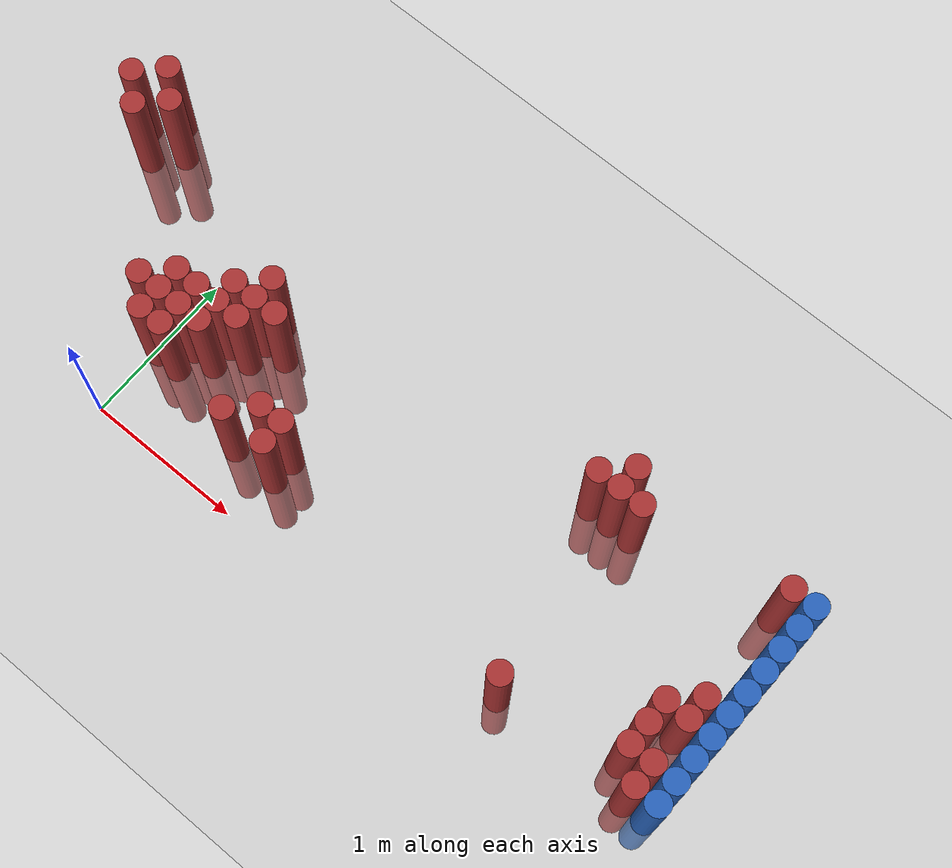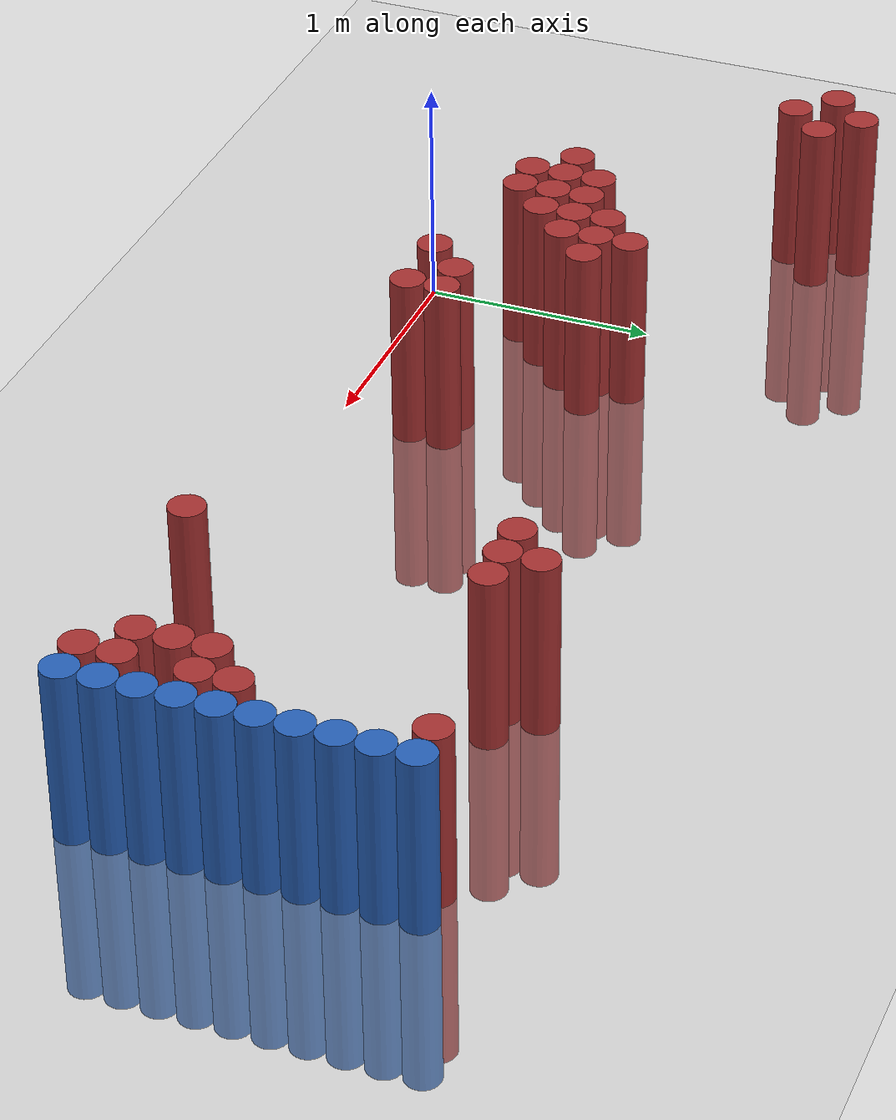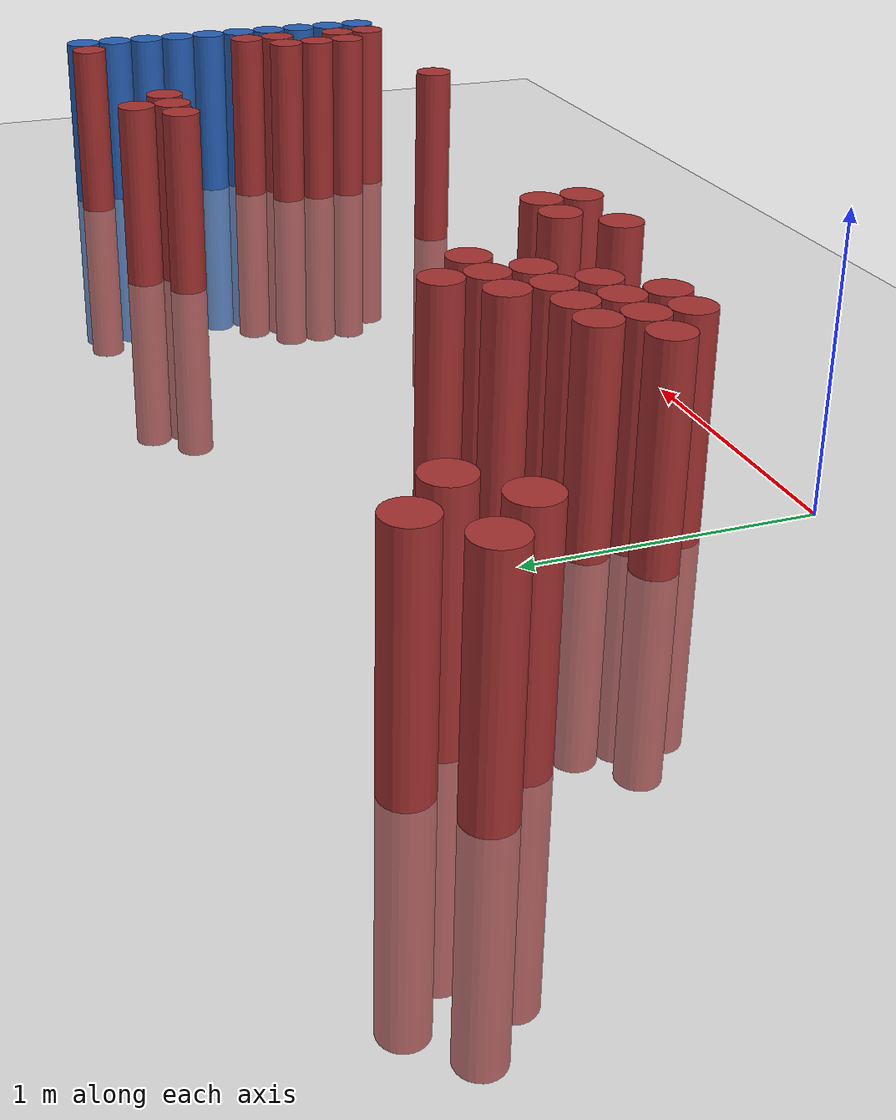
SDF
<sdf version="1.6">
 <world name="default">
  <model name="ground_plane">
   <static>1</static>
   <link name="link">
    <collision name="collision">
     <geometry><plane><normal>0 0 1</normal><size>100 100</size></plane></geometry>
     <surface><friction><ode><mu>100</mu><mu2>50</mu2></ode></friction></surface>
    </collision>
    <visual name="visual">
     <cast_shadows>0</cast_shadows>
     <geometry><plane><normal>0 0 1</normal><size>100 100</size></plane></geometry>
     <material>
      <script><uri>file://media/materials/scripts/gazebo.material</uri><name>Gazebo/Grey</name></script>
     </material>
    </visual>
   </link>
  </model>
  <model name="unit_cylinder_118">
   <static>1</static>
   <pose>3.925000 0.325000 0.000000 0.000000 0.000000 0.000000</pose>
   <link name="link">
    <inertial>
     <mass>1</mass>
     <inertia><ixx>0.145833</ixx><ixy>0</ixy><ixz>0</ixz><iyy>0.145833</iyy><iyz>0</iyz><izz>0.125</izz></inertia>
    </inertial>
    <collision name="collision">
     <geometry><cylinder><radius>0.075000</radius><length>1.5</length></cylinder></geometry>
    </collision>
    <visual name="visual">
     <geometry><cylinder><radius>0.075000</radius><length>1.5</length></cylinder></geometry>
     <material>
      <ambient>0.152000 0.379000 0.720000 1</ambient>
      <diffuse>0.152000 0.379000 0.720000 1</diffuse>
     </material>
     <material>
      <script><name>Gazebo/Grey</name><uri>file://media/materials/scripts/gazebo.material</uri></script>
     </material>
    </visual>
   </link>
  </model>
  <model name="unit_cylinder_120">
   <static>1</static>
   <pose>3.925000 0.475000 0.000000 0.000000 0.000000 0.000000</pose>
   <link name="link">
    <inertial>
     <mass>1</mass>
     <inertia><ixx>0.145833</ixx><ixy>0</ixy><ixz>0</ixz><iyy>0.145833</iyy><iyz>0</iyz><izz>0.125</izz></inertia>
    </inertial>
    <collision name="collision">
     <geometry><cylinder><radius>0.075000</radius><length>1.5</length></cylinder></geometry>
    </collision>
    <visual name="visual">
     <geometry><cylinder><radius>0.075000</radius><length>1.5</length></cylinder></geometry>
     <material>
      <ambient>0.152000 0.379000 0.720000 1</ambient>
      <diffuse>0.152000 0.379000 0.720000 1</diffuse>
     </material>
     <material>
      <script><name>Gazebo/Grey</name><uri>file://media/materials/scripts/gazebo.material</uri></script>
     </material>
    </visual>
   </link>
  </model>
  <model name="unit_cylinder_122">
   <static>1</static>
   <pose>3.925000 0.625000 0.000000 0.000000 0.000000 0.000000</pose>
   <link name="link">
    <inertial>
     <mass>1</mass>
     <inertia><ixx>0.145833</ixx><ixy>0</ixy><ixz>0</ixz><iyy>0.145833</iyy><iyz>0</iyz><izz>0.125</izz></inertia>
    </inertial>
    <collision name="collision">
     <geometry><cylinder><radius>0.075000</radius><length>1.5</length></cylinder></geometry>
    </collision>
    <visual name="visual">
     <geometry><cylinder><radius>0.075000</radius><length>1.5</length></cylinder></geometry>
     <material>
      <ambient>0.152000 0.379000 0.720000 1</ambient>
      <diffuse>0.152000 0.379000 0.720000 1</diffuse>
     </material>
     <material>
      <script><name>Gazebo/Grey</name><uri>file://media/materials/scripts/gazebo.material</uri></script>
     </material>
    </visual>
   </link>
  </model>
  <model name="unit_cylinder_124">
   <static>1</static>
   <pose>3.925000 0.775000 0.000000 0.000000 0.000000 0.000000</pose>
   <link name="link">
    <inertial>
     <mass>1</mass>
     <inertia><ixx>0.145833</ixx><ixy>0</ixy><ixz>0</ixz><iyy>0.145833</iyy><iyz>0</iyz><izz>0.125</izz></inertia>
    </inertial>
    <collision name="collision">
     <geometry><cylinder><radius>0.075000</radius><length>1.5</length></cylinder></geometry>
    </collision>
    <visual name="visual">
     <geometry><cylinder><radius>0.075000</radius><length>1.5</length></cylinder></geometry>
     <material>
      <ambient>0.152000 0.379000 0.720000 1</ambient>
      <diffuse>0.152000 0.379000 0.720000 1</diffuse>
     </material>
     <material>
      <script><name>Gazebo/Grey</name><uri>file://media/materials/scripts/gazebo.material</uri></script>
     </material>
    </visual>
   </link>
  </model>
  <model name="unit_cylinder_126">
   <static>1</static>
   <pose>3.925000 0.925000 0.000000 0.000000 0.000000 0.000000</pose>
   <link name="link">
    <inertial>
     <mass>1</mass>
     <inertia><ixx>0.145833</ixx><ixy>0</ixy><ixz>0</ixz><iyy>0.145833</iyy><iyz>0</iyz><izz>0.125</izz></inertia>
    </inertial>
    <collision name="collision">
     <geometry><cylinder><radius>0.075000</radius><length>1.5</length></cylinder></geometry>
    </collision>
    <visual name="visual">
     <geometry><cylinder><radius>0.075000</radius><length>1.5</length></cylinder></geometry>
     <material>
      <ambient>0.152000 0.379000 0.720000 1</ambient>
      <diffuse>0.152000 0.379000 0.720000 1</diffuse>
     </material>
     <material>
      <script><name>Gazebo/Grey</name><uri>file://media/materials/scripts/gazebo.material</uri></script>
     </material>
    </visual>
   </link>
  </model>
  <model name="unit_cylinder_128">
   <static>1</static>
   <pose>3.925000 1.075000 0.000000 0.000000 0.000000 0.000000</pose>
   <link name="link">
    <inertial>
     <mass>1</mass>
     <inertia><ixx>0.145833</ixx><ixy>0</ixy><ixz>0</ixz><iyy>0.145833</iyy><iyz>0</iyz><izz>0.125</izz></inertia>
    </inertial>
    <collision name="collision">
     <geometry><cylinder><radius>0.075000</radius><length>1.5</length></cylinder></geometry>
    </collision>
    <visual name="visual">
     <geometry><cylinder><radius>0.075000</radius><length>1.5</length></cylinder></geometry>
     <material>
      <ambient>0.152000 0.379000 0.720000 1</ambient>
      <diffuse>0.152000 0.379000 0.720000 1</diffuse>
     </material>
     <material>
      <script><name>Gazebo/Grey</name><uri>file://media/materials/scripts/gazebo.material</uri></script>
     </material>
    </visual>
   </link>
  </model>
  <model name="unit_cylinder_130">
   <static>1</static>
   <pose>3.925000 1.225000 0.000000 0.000000 0.000000 0.000000</pose>
   <link name="link">
    <inertial>
     <mass>1</mass>
     <inertia><ixx>0.145833</ixx><ixy>0</ixy><ixz>0</ixz><iyy>0.145833</iyy><iyz>0</iyz><izz>0.125</izz></inertia>
    </inertial>
    <collision name="collision">
     <geometry><cylinder><radius>0.075000</radius><length>1.5</length></cylinder></geometry>
    </collision>
    <visual name="visual">
     <geometry><cylinder><radius>0.075000</radius><length>1.5</length></cylinder></geometry>
     <material>
      <ambient>0.152000 0.379000 0.720000 1</ambient>
      <diffuse>0.152000 0.379000 0.720000 1</diffuse>
     </material>
     <material>
      <script><name>Gazebo/Grey</name><uri>file://media/materials/scripts/gazebo.material</uri></script>
     </material>
    </visual>
   </link>
  </model>
  <model name="unit_cylinder_132">
   <static>1</static>
   <pose>3.925000 1.375000 0.000000 0.000000 0.000000 0.000000</pose>
   <link name="link">
    <inertial>
     <mass>1</mass>
     <inertia><ixx>0.145833</ixx><ixy>0</ixy><ixz>0</ixz><iyy>0.145833</iyy><iyz>0</iyz><izz>0.125</izz></inertia>
    </inertial>
    <collision name="collision">
     <geometry><cylinder><radius>0.075000</radius><length>1.5</length></cylinder></geometry>
    </collision>
    <visual name="visual">
     <geometry><cylinder><radius>0.075000</radius><length>1.5</length></cylinder></geometry>
     <material>
      <ambient>0.152000 0.379000 0.720000 1</ambient>
      <diffuse>0.152000 0.379000 0.720000 1</diffuse>
     </material>
     <material>
      <script><name>Gazebo/Grey</name><uri>file://media/materials/scripts/gazebo.material</uri></script>
     </material>
    </visual>
   </link>
  </model>
  <model name="unit_cylinder_134">
   <static>1</static>
   <pose>3.925000 1.525000 0.000000 0.000000 0.000000 0.000000</pose>
   <link name="link">
    <inertial>
     <mass>1</mass>
     <inertia><ixx>0.145833</ixx><ixy>0</ixy><ixz>0</ixz><iyy>0.145833</iyy><iyz>0</iyz><izz>0.125</izz></inertia>
    </inertial>
    <collision name="collision">
     <geometry><cylinder><radius>0.075000</radius><length>1.5</length></cylinder></geometry>
    </collision>
    <visual name="visual">
     <geometry><cylinder><radius>0.075000</radius><length>1.5</length></cylinder></geometry>
     <material>
      <ambient>0.152000 0.379000 0.720000 1</ambient>
      <diffuse>0.152000 0.379000 0.720000 1</diffuse>
     </material>
     <material>
      <script><name>Gazebo/Grey</name><uri>file://media/materials/scripts/gazebo.material</uri></script>
     </material>
    </visual>
   </link>
  </model>
  <model name="unit_cylinder_319">
   <static>1</static>
   <pose>-1.025000 1.525000 0.000000 0.000000 0.000000 0.000000</pose>
   <link name="link">
    <inertial>
     <mass>1</mass>
     <inertia><ixx>0.145833</ixx><ixy>0</ixy><ixz>0</ixz><iyy>0.145833</iyy><iyz>0</iyz><izz>0.125</izz></inertia>
    </inertial>
    <collision name="collision">
     <geometry><cylinder><radius>0.075000</radius><length>1.5</length></cylinder></geometry>
    </collision>
    <visual name="visual">
     <geometry><cylinder><radius>0.075000</radius><length>1.5</length></cylinder></geometry>
     <material>
      <ambient>0.648000 0.192000 0.192000 1</ambient>
      <diffuse>0.648000 0.192000 0.192000 1</diffuse>
     </material>
     <material>
      <script><name>Gazebo/Grey</name><uri>file://media/materials/scripts/gazebo.material</uri></script>
     </material>
    </visual>
   </link>
  </model>
  <model name="unit_cylinder_323">
   <static>1</static>
   <pose>-0.875000 1.375000 0.000000 0.000000 0.000000 0.000000</pose>
   <link name="link">
    <inertial>
     <mass>1</mass>
     <inertia><ixx>0.145833</ixx><ixy>0</ixy><ixz>0</ixz><iyy>0.145833</iyy><iyz>0</iyz><izz>0.125</izz></inertia>
    </inertial>
    <collision name="collision">
     <geometry><cylinder><radius>0.075000</radius><length>1.5</length></cylinder></geometry>
    </collision>
    <visual name="visual">
     <geometry><cylinder><radius>0.075000</radius><length>1.5</length></cylinder></geometry>
     <material>
      <ambient>0.648000 0.192000 0.192000 1</ambient>
      <diffuse>0.648000 0.192000 0.192000 1</diffuse>
     </material>
     <material>
      <script><name>Gazebo/Grey</name><uri>file://media/materials/scripts/gazebo.material</uri></script>
     </material>
    </visual>
   </link>
  </model>
  <model name="unit_cylinder_324">
   <static>1</static>
   <pose>-0.875000 1.675000 0.000000 0.000000 0.000000 0.000000</pose>
   <link name="link">
    <inertial>
     <mass>1</mass>
     <inertia><ixx>0.145833</ixx><ixy>0</ixy><ixz>0</ixz><iyy>0.145833</iyy><iyz>0</iyz><izz>0.125</izz></inertia>
    </inertial>
    <collision name="collision">
     <geometry><cylinder><radius>0.075000</radius><length>1.5</length></cylinder></geometry>
    </collision>
    <visual name="visual">
     <geometry><cylinder><radius>0.075000</radius><length>1.5</length></cylinder></geometry>
     <material>
      <ambient>0.648000 0.192000 0.192000 1</ambient>
      <diffuse>0.648000 0.192000 0.192000 1</diffuse>
     </material>
     <material>
      <script><name>Gazebo/Grey</name><uri>file://media/materials/scripts/gazebo.material</uri></script>
     </material>
    </visual>
   </link>
  </model>
  <model name="unit_cylinder_329">
   <static>1</static>
   <pose>-0.725000 1.525000 0.000000 0.000000 0.000000 0.000000</pose>
   <link name="link">
    <inertial>
     <mass>1</mass>
     <inertia><ixx>0.145833</ixx><ixy>0</ixy><ixz>0</ixz><iyy>0.145833</iyy><iyz>0</iyz><izz>0.125</izz></inertia>
    </inertial>
    <collision name="collision">
     <geometry><cylinder><radius>0.075000</radius><length>1.5</length></cylinder></geometry>
    </collision>
    <visual name="visual">
     <geometry><cylinder><radius>0.075000</radius><length>1.5</length></cylinder></geometry>
     <material>
      <ambient>0.648000 0.192000 0.192000 1</ambient>
      <diffuse>0.648000 0.192000 0.192000 1</diffuse>
     </material>
     <material>
      <script><name>Gazebo/Grey</name><uri>file://media/materials/scripts/gazebo.material</uri></script>
     </material>
    </visual>
   </link>
  </model>
  <model name="unit_cylinder_335">
   <static>1</static>
   <pose>-0.125000 0.625000 0.000000 0.000000 0.000000 0.000000</pose>
   <link name="link">
    <inertial>
     <mass>1</mass>
     <inertia><ixx>0.145833</ixx><ixy>0</ixy><ixz>0</ixz><iyy>0.145833</iyy><iyz>0</iyz><izz>0.125</izz></inertia>
    </inertial>
    <collision name="collision">
     <geometry><cylinder><radius>0.075000</radius><length>1.5</length></cylinder></geometry>
    </collision>
    <visual name="visual">
     <geometry><cylinder><radius>0.075000</radius><length>1.5</length></cylinder></geometry>
     <material>
      <ambient>0.648000 0.192000 0.192000 1</ambient>
      <diffuse>0.648000 0.192000 0.192000 1</diffuse>
     </material>
     <material>
      <script><name>Gazebo/Grey</name><uri>file://media/materials/scripts/gazebo.material</uri></script>
     </material>
    </visual>
   </link>
  </model>
  <model name="unit_cylinder_338">
   <static>1</static>
   <pose>0.025000 0.475000 0.000000 0.000000 0.000000 0.000000</pose>
   <link name="link">
    <inertial>
     <mass>1</mass>
     <inertia><ixx>0.145833</ixx><ixy>0</ixy><ixz>0</ixz><iyy>0.145833</iyy><iyz>0</iyz><izz>0.125</izz></inertia>
    </inertial>
    <collision name="collision">
     <geometry><cylinder><radius>0.075000</radius><length>1.5</length></cylinder></geometry>
    </collision>
    <visual name="visual">
     <geometry><cylinder><radius>0.075000</radius><length>1.5</length></cylinder></geometry>
     <material>
      <ambient>0.648000 0.192000 0.192000 1</ambient>
      <diffuse>0.648000 0.192000 0.192000 1</diffuse>
     </material>
     <material>
      <script><name>Gazebo/Grey</name><uri>file://media/materials/scripts/gazebo.material</uri></script>
     </material>
    </visual>
   </link>
  </model>
  <model name="unit_cylinder_339">
   <static>1</static>
   <pose>0.025000 0.625000 0.000000 0.000000 0.000000 0.000000</pose>
   <link name="link">
    <inertial>
     <mass>1</mass>
     <inertia><ixx>0.145833</ixx><ixy>0</ixy><ixz>0</ixz><iyy>0.145833</iyy><iyz>0</iyz><izz>0.125</izz></inertia>
    </inertial>
    <collision name="collision">
     <geometry><cylinder><radius>0.075000</radius><length>1.5</length></cylinder></geometry>
    </collision>
    <visual name="visual">
     <geometry><cylinder><radius>0.075000</radius><length>1.5</length></cylinder></geometry>
     <material>
      <ambient>0.648000 0.192000 0.192000 1</ambient>
      <diffuse>0.648000 0.192000 0.192000 1</diffuse>
     </material>
     <material>
      <script><name>Gazebo/Grey</name><uri>file://media/materials/scripts/gazebo.material</uri></script>
     </material>
    </visual>
   </link>
  </model>
  <model name="unit_cylinder_340">
   <static>1</static>
   <pose>0.025000 0.775000 0.000000 0.000000 0.000000 0.000000</pose>
   <link name="link">
    <inertial>
     <mass>1</mass>
     <inertia><ixx>0.145833</ixx><ixy>0</ixy><ixz>0</ixz><iyy>0.145833</iyy><iyz>0</iyz><izz>0.125</izz></inertia>
    </inertial>
    <collision name="collision">
     <geometry><cylinder><radius>0.075000</radius><length>1.5</length></cylinder></geometry>
    </collision>
    <visual name="visual">
     <geometry><cylinder><radius>0.075000</radius><length>1.5</length></cylinder></geometry>
     <material>
      <ambient>0.648000 0.192000 0.192000 1</ambient>
      <diffuse>0.648000 0.192000 0.192000 1</diffuse>
     </material>
     <material>
      <script><name>Gazebo/Grey</name><uri>file://media/materials/scripts/gazebo.material</uri></script>
     </material>
    </visual>
   </link>
  </model>
  <model name="unit_cylinder_342">
   <static>1</static>
   <pose>0.175000 0.475000 0.000000 0.000000 0.000000 0.000000</pose>
   <link name="link">
    <inertial>
     <mass>1</mass>
     <inertia><ixx>0.145833</ixx><ixy>0</ixy><ixz>0</ixz><iyy>0.145833</iyy><iyz>0</iyz><izz>0.125</izz></inertia>
    </inertial>
    <collision name="collision">
     <geometry><cylinder><radius>0.075000</radius><length>1.5</length></cylinder></geometry>
    </collision>
    <visual name="visual">
     <geometry><cylinder><radius>0.075000</radius><length>1.5</length></cylinder></geometry>
     <material>
      <ambient>0.648000 0.192000 0.192000 1</ambient>
      <diffuse>0.648000 0.192000 0.192000 1</diffuse>
     </material>
     <material>
      <script><name>Gazebo/Grey</name><uri>file://media/materials/scripts/gazebo.material</uri></script>
     </material>
    </visual>
   </link>
  </model>
  <model name="unit_cylinder_343">
   <static>1</static>
   <pose>0.175000 0.625000 0.000000 0.000000 0.000000 0.000000</pose>
   <link name="link">
    <inertial>
     <mass>1</mass>
     <inertia><ixx>0.145833</ixx><ixy>0</ixy><ixz>0</ixz><iyy>0.145833</iyy><iyz>0</iyz><izz>0.125</izz></inertia>
    </inertial>
    <collision name="collision">
     <geometry><cylinder><radius>0.075000</radius><length>1.5</length></cylinder></geometry>
    </collision>
    <visual name="visual">
     <geometry><cylinder><radius>0.075000</radius><length>1.5</length></cylinder></geometry>
     <material>
      <ambient>0.648000 0.192000 0.192000 1</ambient>
      <diffuse>0.648000 0.192000 0.192000 1</diffuse>
     </material>
     <material>
      <script><name>Gazebo/Grey</name><uri>file://media/materials/scripts/gazebo.material</uri></script>
     </material>
    </visual>
   </link>
  </model>
  <model name="unit_cylinder_344">
   <static>1</static>
   <pose>0.175000 0.775000 0.000000 0.000000 0.000000 0.000000</pose>
   <link name="link">
    <inertial>
     <mass>1</mass>
     <inertia><ixx>0.145833</ixx><ixy>0</ixy><ixz>0</ixz><iyy>0.145833</iyy><iyz>0</iyz><izz>0.125</izz></inertia>
    </inertial>
    <collision name="collision">
     <geometry><cylinder><radius>0.075000</radius><length>1.5</length></cylinder></geometry>
    </collision>
    <visual name="visual">
     <geometry><cylinder><radius>0.075000</radius><length>1.5</length></cylinder></geometry>
     <material>
      <ambient>0.648000 0.192000 0.192000 1</ambient>
      <diffuse>0.648000 0.192000 0.192000 1</diffuse>
     </material>
     <material>
      <script><name>Gazebo/Grey</name><uri>file://media/materials/scripts/gazebo.material</uri></script>
     </material>
    </visual>
   </link>
  </model>
  <model name="unit_cylinder_348">
   <static>1</static>
   <pose>0.325000 0.625000 0.000000 0.000000 0.000000 0.000000</pose>
   <link name="link">
    <inertial>
     <mass>1</mass>
     <inertia><ixx>0.145833</ixx><ixy>0</ixy><ixz>0</ixz><iyy>0.145833</iyy><iyz>0</iyz><izz>0.125</izz></inertia>
    </inertial>
    <collision name="collision">
     <geometry><cylinder><radius>0.075000</radius><length>1.5</length></cylinder></geometry>
    </collision>
    <visual name="visual">
     <geometry><cylinder><radius>0.075000</radius><length>1.5</length></cylinder></geometry>
     <material>
      <ambient>0.648000 0.192000 0.192000 1</ambient>
      <diffuse>0.648000 0.192000 0.192000 1</diffuse>
     </material>
     <material>
      <script><name>Gazebo/Grey</name><uri>file://media/materials/scripts/gazebo.material</uri></script>
     </material>
    </visual>
   </link>
  </model>
  <model name="unit_cylinder_349">
   <static>1</static>
   <pose>0.325000 0.775000 0.000000 0.000000 0.000000 0.000000</pose>
   <link name="link">
    <inertial>
     <mass>1</mass>
     <inertia><ixx>0.145833</ixx><ixy>0</ixy><ixz>0</ixz><iyy>0.145833</iyy><iyz>0</iyz><izz>0.125</izz></inertia>
    </inertial>
    <collision name="collision">
     <geometry><cylinder><radius>0.075000</radius><length>1.5</length></cylinder></geometry>
    </collision>
    <visual name="visual">
     <geometry><cylinder><radius>0.075000</radius><length>1.5</length></cylinder></geometry>
     <material>
      <ambient>0.648000 0.192000 0.192000 1</ambient>
      <diffuse>0.648000 0.192000 0.192000 1</diffuse>
     </material>
     <material>
      <script><name>Gazebo/Grey</name><uri>file://media/materials/scripts/gazebo.material</uri></script>
     </material>
    </visual>
   </link>
  </model>
  <model name="unit_cylinder_350">
   <static>1</static>
   <pose>0.325000 0.925000 0.000000 0.000000 0.000000 0.000000</pose>
   <link name="link">
    <inertial>
     <mass>1</mass>
     <inertia><ixx>0.145833</ixx><ixy>0</ixy><ixz>0</ixz><iyy>0.145833</iyy><iyz>0</iyz><izz>0.125</izz></inertia>
    </inertial>
    <collision name="collision">
     <geometry><cylinder><radius>0.075000</radius><length>1.5</length></cylinder></geometry>
    </collision>
    <visual name="visual">
     <geometry><cylinder><radius>0.075000</radius><length>1.5</length></cylinder></geometry>
     <material>
      <ambient>0.648000 0.192000 0.192000 1</ambient>
      <diffuse>0.648000 0.192000 0.192000 1</diffuse>
     </material>
     <material>
      <script><name>Gazebo/Grey</name><uri>file://media/materials/scripts/gazebo.material</uri></script>
     </material>
    </visual>
   </link>
  </model>
  <model name="unit_cylinder_353">
   <static>1</static>
   <pose>0.475000 0.775000 0.000000 0.000000 0.000000 0.000000</pose>
   <link name="link">
    <inertial>
     <mass>1</mass>
     <inertia><ixx>0.145833</ixx><ixy>0</ixy><ixz>0</ixz><iyy>0.145833</iyy><iyz>0</iyz><izz>0.125</izz></inertia>
    </inertial>
    <collision name="collision">
     <geometry><cylinder><radius>0.075000</radius><length>1.5</length></cylinder></geometry>
    </collision>
    <visual name="visual">
     <geometry><cylinder><radius>0.075000</radius><length>1.5</length></cylinder></geometry>
     <material>
      <ambient>0.648000 0.192000 0.192000 1</ambient>
      <diffuse>0.648000 0.192000 0.192000 1</diffuse>
     </material>
     <material>
      <script><name>Gazebo/Grey</name><uri>file://media/materials/scripts/gazebo.material</uri></script>
     </material>
    </visual>
   </link>
  </model>
  <model name="unit_cylinder_354">
   <static>1</static>
   <pose>0.475000 0.925000 0.000000 0.000000 0.000000 0.000000</pose>
   <link name="link">
    <inertial>
     <mass>1</mass>
     <inertia><ixx>0.145833</ixx><ixy>0</ixy><ixz>0</ixz><iyy>0.145833</iyy><iyz>0</iyz><izz>0.125</izz></inertia>
    </inertial>
    <collision name="collision">
     <geometry><cylinder><radius>0.075000</radius><length>1.5</length></cylinder></geometry>
    </collision>
    <visual name="visual">
     <geometry><cylinder><radius>0.075000</radius><length>1.5</length></cylinder></geometry>
     <material>
      <ambient>0.648000 0.192000 0.192000 1</ambient>
      <diffuse>0.648000 0.192000 0.192000 1</diffuse>
     </material>
     <material>
      <script><name>Gazebo/Grey</name><uri>file://media/materials/scripts/gazebo.material</uri></script>
     </material>
    </visual>
   </link>
  </model>
  <model name="unit_cylinder_355">
   <static>1</static>
   <pose>0.475000 1.075000 0.000000 0.000000 0.000000 0.000000</pose>
   <link name="link">
    <inertial>
     <mass>1</mass>
     <inertia><ixx>0.145833</ixx><ixy>0</ixy><ixz>0</ixz><iyy>0.145833</iyy><iyz>0</iyz><izz>0.125</izz></inertia>
    </inertial>
    <collision name="collision">
     <geometry><cylinder><radius>0.075000</radius><length>1.5</length></cylinder></geometry>
    </collision>
    <visual name="visual">
     <geometry><cylinder><radius>0.075000</radius><length>1.5</length></cylinder></geometry>
     <material>
      <ambient>0.648000 0.192000 0.192000 1</ambient>
      <diffuse>0.648000 0.192000 0.192000 1</diffuse>
     </material>
     <material>
      <script><name>Gazebo/Grey</name><uri>file://media/materials/scripts/gazebo.material</uri></script>
     </material>
    </visual>
   </link>
  </model>
  <model name="unit_cylinder_357">
   <static>1</static>
   <pose>0.625000 0.925000 0.000000 0.000000 0.000000 0.000000</pose>
   <link name="link">
    <inertial>
     <mass>1</mass>
     <inertia><ixx>0.145833</ixx><ixy>0</ixy><ixz>0</ixz><iyy>0.145833</iyy><iyz>0</iyz><izz>0.125</izz></inertia>
    </inertial>
    <collision name="collision">
     <geometry><cylinder><radius>0.075000</radius><length>1.5</length></cylinder></geometry>
    </collision>
    <visual name="visual">
     <geometry><cylinder><radius>0.075000</radius><length>1.5</length></cylinder></geometry>
     <material>
      <ambient>0.648000 0.192000 0.192000 1</ambient>
      <diffuse>0.648000 0.192000 0.192000 1</diffuse>
     </material>
     <material>
      <script><name>Gazebo/Grey</name><uri>file://media/materials/scripts/gazebo.material</uri></script>
     </material>
    </visual>
   </link>
  </model>
  <model name="unit_cylinder_358">
   <static>1</static>
   <pose>0.775000 0.325000 0.000000 0.000000 0.000000 0.000000</pose>
   <link name="link">
    <inertial>
     <mass>1</mass>
     <inertia><ixx>0.145833</ixx><ixy>0</ixy><ixz>0</ixz><iyy>0.145833</iyy><iyz>0</iyz><izz>0.125</izz></inertia>
    </inertial>
    <collision name="collision">
     <geometry><cylinder><radius>0.075000</radius><length>1.5</length></cylinder></geometry>
    </collision>
    <visual name="visual">
     <geometry><cylinder><radius>0.075000</radius><length>1.5</length></cylinder></geometry>
     <material>
      <ambient>0.648000 0.192000 0.192000 1</ambient>
      <diffuse>0.648000 0.192000 0.192000 1</diffuse>
     </material>
     <material>
      <script><name>Gazebo/Grey</name><uri>file://media/materials/scripts/gazebo.material</uri></script>
     </material>
    </visual>
   </link>
  </model>
  <model name="unit_cylinder_359">
   <static>1</static>
   <pose>0.925000 0.475000 0.000000 0.000000 0.000000 0.000000</pose>
   <link name="link">
    <inertial>
     <mass>1</mass>
     <inertia><ixx>0.145833</ixx><ixy>0</ixy><ixz>0</ixz><iyy>0.145833</iyy><iyz>0</iyz><izz>0.125</izz></inertia>
    </inertial>
    <collision name="collision">
     <geometry><cylinder><radius>0.075000</radius><length>1.5</length></cylinder></geometry>
    </collision>
    <visual name="visual">
     <geometry><cylinder><radius>0.075000</radius><length>1.5</length></cylinder></geometry>
     <material>
      <ambient>0.648000 0.192000 0.192000 1</ambient>
      <diffuse>0.648000 0.192000 0.192000 1</diffuse>
     </material>
     <material>
      <script><name>Gazebo/Grey</name><uri>file://media/materials/scripts/gazebo.material</uri></script>
     </material>
    </visual>
   </link>
  </model>
  <model name="unit_cylinder_361">
   <static>1</static>
   <pose>1.075000 0.325000 0.000000 0.000000 0.000000 0.000000</pose>
   <link name="link">
    <inertial>
     <mass>1</mass>
     <inertia><ixx>0.145833</ixx><ixy>0</ixy><ixz>0</ixz><iyy>0.145833</iyy><iyz>0</iyz><izz>0.125</izz></inertia>
    </inertial>
    <collision name="collision">
     <geometry><cylinder><radius>0.075000</radius><length>1.5</length></cylinder></geometry>
    </collision>
    <visual name="visual">
     <geometry><cylinder><radius>0.075000</radius><length>1.5</length></cylinder></geometry>
     <material>
      <ambient>0.648000 0.192000 0.192000 1</ambient>
      <diffuse>0.648000 0.192000 0.192000 1</diffuse>
     </material>
     <material>
      <script><name>Gazebo/Grey</name><uri>file://media/materials/scripts/gazebo.material</uri></script>
     </material>
    </visual>
   </link>
  </model>
  <model name="unit_cylinder_362">
   <static>1</static>
   <pose>1.075000 0.475000 0.000000 0.000000 0.000000 0.000000</pose>
   <link name="link">
    <inertial>
     <mass>1</mass>
     <inertia><ixx>0.145833</ixx><ixy>0</ixy><ixz>0</ixz><iyy>0.145833</iyy><iyz>0</iyz><izz>0.125</izz></inertia>
    </inertial>
    <collision name="collision">
     <geometry><cylinder><radius>0.075000</radius><length>1.5</length></cylinder></geometry>
    </collision>
    <visual name="visual">
     <geometry><cylinder><radius>0.075000</radius><length>1.5</length></cylinder></geometry>
     <material>
      <ambient>0.648000 0.192000 0.192000 1</ambient>
      <diffuse>0.648000 0.192000 0.192000 1</diffuse>
     </material>
     <material>
      <script><name>Gazebo/Grey</name><uri>file://media/materials/scripts/gazebo.material</uri></script>
     </material>
    </visual>
   </link>
  </model>
  <model name="unit_cylinder_380">
   <static>1</static>
   <pose>2.575000 1.375000 0.000000 0.000000 0.000000 0.000000</pose>
   <link name="link">
    <inertial>
     <mass>1</mass>
     <inertia><ixx>0.145833</ixx><ixy>0</ixy><ixz>0</ixz><iyy>0.145833</iyy><iyz>0</iyz><izz>0.125</izz></inertia>
    </inertial>
    <collision name="collision">
     <geometry><cylinder><radius>0.075000</radius><length>1.5</length></cylinder></geometry>
    </collision>
    <visual name="visual">
     <geometry><cylinder><radius>0.075000</radius><length>1.5</length></cylinder></geometry>
     <material>
      <ambient>0.648000 0.192000 0.192000 1</ambient>
      <diffuse>0.648000 0.192000 0.192000 1</diffuse>
     </material>
     <material>
      <script><name>Gazebo/Grey</name><uri>file://media/materials/scripts/gazebo.material</uri></script>
     </material>
    </visual>
   </link>
  </model>
  <model name="unit_cylinder_387">
   <static>1</static>
   <pose>2.725000 1.375000 0.000000 0.000000 0.000000 0.000000</pose>
   <link name="link">
    <inertial>
     <mass>1</mass>
     <inertia><ixx>0.145833</ixx><ixy>0</ixy><ixz>0</ixz><iyy>0.145833</iyy><iyz>0</iyz><izz>0.125</izz></inertia>
    </inertial>
    <collision name="collision">
     <geometry><cylinder><radius>0.075000</radius><length>1.5</length></cylinder></geometry>
    </collision>
    <visual name="visual">
     <geometry><cylinder><radius>0.075000</radius><length>1.5</length></cylinder></geometry>
     <material>
      <ambient>0.648000 0.192000 0.192000 1</ambient>
      <diffuse>0.648000 0.192000 0.192000 1</diffuse>
     </material>
     <material>
      <script><name>Gazebo/Grey</name><uri>file://media/materials/scripts/gazebo.material</uri></script>
     </material>
    </visual>
   </link>
  </model>
  <model name="unit_cylinder_388">
   <static>1</static>
   <pose>2.725000 1.525000 0.000000 0.000000 0.000000 0.000000</pose>
   <link name="link">
    <inertial>
     <mass>1</mass>
     <inertia><ixx>0.145833</ixx><ixy>0</ixy><ixz>0</ixz><iyy>0.145833</iyy><iyz>0</iyz><izz>0.125</izz></inertia>
    </inertial>
    <collision name="collision">
     <geometry><cylinder><radius>0.075000</radius><length>1.5</length></cylinder></geometry>
    </collision>
    <visual name="visual">
     <geometry><cylinder><radius>0.075000</radius><length>1.5</length></cylinder></geometry>
     <material>
      <ambient>0.648000 0.192000 0.192000 1</ambient>
      <diffuse>0.648000 0.192000 0.192000 1</diffuse>
     </material>
     <material>
      <script><name>Gazebo/Grey</name><uri>file://media/materials/scripts/gazebo.material</uri></script>
     </material>
    </visual>
   </link>
  </model>
  <model name="unit_cylinder_391">
   <static>1</static>
   <pose>2.875000 0.175000 0.000000 0.000000 0.000000 0.000000</pose>
   <link name="link">
    <inertial>
     <mass>1</mass>
     <inertia><ixx>0.145833</ixx><ixy>0</ixy><ixz>0</ixz><iyy>0.145833</iyy><iyz>0</iyz><izz>0.125</izz></inertia>
    </inertial>
    <collision name="collision">
     <geometry><cylinder><radius>0.075000</radius><length>1.5</length></cylinder></geometry>
    </collision>
    <visual name="visual">
     <geometry><cylinder><radius>0.075000</radius><length>1.5</length></cylinder></geometry>
     <material>
      <ambient>0.648000 0.192000 0.192000 1</ambient>
      <diffuse>0.648000 0.192000 0.192000 1</diffuse>
     </material>
     <material>
      <script><name>Gazebo/Grey</name><uri>file://media/materials/scripts/gazebo.material</uri></script>
     </material>
    </visual>
   </link>
  </model>
  <model name="unit_cylinder_392">
   <static>1</static>
   <pose>2.875000 1.375000 0.000000 0.000000 0.000000 0.000000</pose>
   <link name="link">
    <inertial>
     <mass>1</mass>
     <inertia><ixx>0.145833</ixx><ixy>0</ixy><ixz>0</ixz><iyy>0.145833</iyy><iyz>0</iyz><izz>0.125</izz></inertia>
    </inertial>
    <collision name="collision">
     <geometry><cylinder><radius>0.075000</radius><length>1.5</length></cylinder></geometry>
    </collision>
    <visual name="visual">
     <geometry><cylinder><radius>0.075000</radius><length>1.5</length></cylinder></geometry>
     <material>
      <ambient>0.648000 0.192000 0.192000 1</ambient>
      <diffuse>0.648000 0.192000 0.192000 1</diffuse>
     </material>
     <material>
      <script><name>Gazebo/Grey</name><uri>file://media/materials/scripts/gazebo.material</uri></script>
     </material>
    </visual>
   </link>
  </model>
  <model name="unit_cylinder_411">
   <static>1</static>
   <pose>3.625000 0.325000 0.000000 0.000000 0.000000 0.000000</pose>
   <link name="link">
    <inertial>
     <mass>1</mass>
     <inertia><ixx>0.145833</ixx><ixy>0</ixy><ixz>0</ixz><iyy>0.145833</iyy><iyz>0</iyz><izz>0.125</izz></inertia>
    </inertial>
    <collision name="collision">
     <geometry><cylinder><radius>0.075000</radius><length>1.5</length></cylinder></geometry>
    </collision>
    <visual name="visual">
     <geometry><cylinder><radius>0.075000</radius><length>1.5</length></cylinder></geometry>
     <material>
      <ambient>0.648000 0.192000 0.192000 1</ambient>
      <diffuse>0.648000 0.192000 0.192000 1</diffuse>
     </material>
     <material>
      <script><name>Gazebo/Grey</name><uri>file://media/materials/scripts/gazebo.material</uri></script>
     </material>
    </visual>
   </link>
  </model>
  <model name="unit_cylinder_412">
   <static>1</static>
   <pose>3.625000 0.475000 0.000000 0.000000 0.000000 0.000000</pose>
   <link name="link">
    <inertial>
     <mass>1</mass>
     <inertia><ixx>0.145833</ixx><ixy>0</ixy><ixz>0</ixz><iyy>0.145833</iyy><iyz>0</iyz><izz>0.125</izz></inertia>
    </inertial>
    <collision name="collision">
     <geometry><cylinder><radius>0.075000</radius><length>1.5</length></cylinder></geometry>
    </collision>
    <visual name="visual">
     <geometry><cylinder><radius>0.075000</radius><length>1.5</length></cylinder></geometry>
     <material>
      <ambient>0.648000 0.192000 0.192000 1</ambient>
      <diffuse>0.648000 0.192000 0.192000 1</diffuse>
     </material>
     <material>
      <script><name>Gazebo/Grey</name><uri>file://media/materials/scripts/gazebo.material</uri></script>
     </material>
    </visual>
   </link>
  </model>
  <model name="unit_cylinder_413">
   <static>1</static>
   <pose>3.625000 0.625000 0.000000 0.000000 0.000000 0.000000</pose>
   <link name="link">
    <inertial>
     <mass>1</mass>
     <inertia><ixx>0.145833</ixx><ixy>0</ixy><ixz>0</ixz><iyy>0.145833</iyy><iyz>0</iyz><izz>0.125</izz></inertia>
    </inertial>
    <collision name="collision">
     <geometry><cylinder><radius>0.075000</radius><length>1.5</length></cylinder></geometry>
    </collision>
    <visual name="visual">
     <geometry><cylinder><radius>0.075000</radius><length>1.5</length></cylinder></geometry>
     <material>
      <ambient>0.648000 0.192000 0.192000 1</ambient>
      <diffuse>0.648000 0.192000 0.192000 1</diffuse>
     </material>
     <material>
      <script><name>Gazebo/Grey</name><uri>file://media/materials/scripts/gazebo.material</uri></script>
     </material>
    </visual>
   </link>
  </model>
  <model name="unit_cylinder_422">
   <static>1</static>
   <pose>3.775000 0.175000 0.000000 0.000000 0.000000 0.000000</pose>
   <link name="link">
    <inertial>
     <mass>1</mass>
     <inertia><ixx>0.145833</ixx><ixy>0</ixy><ixz>0</ixz><iyy>0.145833</iyy><iyz>0</iyz><izz>0.125</izz></inertia>
    </inertial>
    <collision name="collision">
     <geometry><cylinder><radius>0.075000</radius><length>1.5</length></cylinder></geometry>
    </collision>
    <visual name="visual">
     <geometry><cylinder><radius>0.075000</radius><length>1.5</length></cylinder></geometry>
     <material>
      <ambient>0.648000 0.192000 0.192000 1</ambient>
      <diffuse>0.648000 0.192000 0.192000 1</diffuse>
     </material>
     <material>
      <script><name>Gazebo/Grey</name><uri>file://media/materials/scripts/gazebo.material</uri></script>
     </material>
    </visual>
   </link>
  </model>
  <model name="unit_cylinder_423">
   <static>1</static>
   <pose>3.775000 0.325000 0.000000 0.000000 0.000000 0.000000</pose>
   <link name="link">
    <inertial>
     <mass>1</mass>
     <inertia><ixx>0.145833</ixx><ixy>0</ixy><ixz>0</ixz><iyy>0.145833</iyy><iyz>0</iyz><izz>0.125</izz></inertia>
    </inertial>
    <collision name="collision">
     <geometry><cylinder><radius>0.075000</radius><length>1.5</length></cylinder></geometry>
    </collision>
    <visual name="visual">
     <geometry><cylinder><radius>0.075000</radius><length>1.5</length></cylinder></geometry>
     <material>
      <ambient>0.648000 0.192000 0.192000 1</ambient>
      <diffuse>0.648000 0.192000 0.192000 1</diffuse>
     </material>
     <material>
      <script><name>Gazebo/Grey</name><uri>file://media/materials/scripts/gazebo.material</uri></script>
     </material>
    </visual>
   </link>
  </model>
  <model name="unit_cylinder_424">
   <static>1</static>
   <pose>3.775000 0.625000 0.000000 0.000000 0.000000 0.000000</pose>
   <link name="link">
    <inertial>
     <mass>1</mass>
     <inertia><ixx>0.145833</ixx><ixy>0</ixy><ixz>0</ixz><iyy>0.145833</iyy><iyz>0</iyz><izz>0.125</izz></inertia>
    </inertial>
    <collision name="collision">
     <geometry><cylinder><radius>0.075000</radius><length>1.5</length></cylinder></geometry>
    </collision>
    <visual name="visual">
     <geometry><cylinder><radius>0.075000</radius><length>1.5</length></cylinder></geometry>
     <material>
      <ambient>0.648000 0.192000 0.192000 1</ambient>
      <diffuse>0.648000 0.192000 0.192000 1</diffuse>
     </material>
     <material>
      <script><name>Gazebo/Grey</name><uri>file://media/materials/scripts/gazebo.material</uri></script>
     </material>
    </visual>
   </link>
  </model>
  <model name="unit_cylinder_425">
   <static>1</static>
   <pose>3.775000 0.775000 0.000000 0.000000 0.000000 0.000000</pose>
   <link name="link">
    <inertial>
     <mass>1</mass>
     <inertia><ixx>0.145833</ixx><ixy>0</ixy><ixz>0</ixz><iyy>0.145833</iyy><iyz>0</iyz><izz>0.125</izz></inertia>
    </inertial>
    <collision name="collision">
     <geometry><cylinder><radius>0.075000</radius><length>1.5</length></cylinder></geometry>
    </collision>
    <visual name="visual">
     <geometry><cylinder><radius>0.075000</radius><length>1.5</length></cylinder></geometry>
     <material>
      <ambient>0.648000 0.192000 0.192000 1</ambient>
      <diffuse>0.648000 0.192000 0.192000 1</diffuse>
     </material>
     <material>
      <script><name>Gazebo/Grey</name><uri>file://media/materials/scripts/gazebo.material</uri></script>
     </material>
    </visual>
   </link>
  </model>
  <model name="unit_cylinder_426">
   <static>1</static>
   <pose>3.775000 1.525000 0.000000 0.000000 0.000000 0.000000</pose>
   <link name="link">
    <inertial>
     <mass>1</mass>
     <inertia><ixx>0.145833</ixx><ixy>0</ixy><ixz>0</ixz><iyy>0.145833</iyy><iyz>0</iyz><izz>0.125</izz></inertia>
    </inertial>
    <collision name="collision">
     <geometry><cylinder><radius>0.075000</radius><length>1.5</length></cylinder></geometry>
    </collision>
    <visual name="visual">
     <geometry><cylinder><radius>0.075000</radius><length>1.5</length></cylinder></geometry>
     <material>
      <ambient>0.648000 0.192000 0.192000 1</ambient>
      <diffuse>0.648000 0.192000 0.192000 1</diffuse>
     </material>
     <material>
      <script><name>Gazebo/Grey</name><uri>file://media/materials/scripts/gazebo.material</uri></script>
     </material>
    </visual>
   </link>
  </model>
  <model name="unit_cylinder_449">
   <static>1</static>
   <pose>3.925000 0.175000 0.000000 0.000000 0.000000 0.000000</pose>
   <link name="link">
    <inertial>
     <mass>1</mass>
     <inertia><ixx>0.145833</ixx><ixy>0</ixy><ixz>0</ixz><iyy>0.145833</iyy><iyz>0</iyz><izz>0.125</izz></inertia>
    </inertial>
    <collision name="collision">
     <geometry><cylinder><radius>0.075000</radius><length>1.5</length></cylinder></geometry>
    </collision>
    <visual name="visual">
     <geometry><cylinder><radius>0.075000</radius><length>1.5</length></cylinder></geometry>
     <material>
      <ambient>0.152000 0.379000 0.720000 1</ambient>
      <diffuse>0.152000 0.379000 0.720000 1</diffuse>
     </material>
     <material>
      <script><name>Gazebo/Grey</name><uri>file://media/materials/scripts/gazebo.material</uri></script>
     </material>
    </visual>
   </link>
  </model>
  <model name="unit_cylinder_450">
   <static>1</static>
   <pose>3.925000 0.325000 0.000000 0.000000 0.000000 0.000000</pose>
   <link name="link">
    <inertial>
     <mass>1</mass>
     <inertia><ixx>0.145833</ixx><ixy>0</ixy><ixz>0</ixz><iyy>0.145833</iyy><iyz>0</iyz><izz>0.125</izz></inertia>
    </inertial>
    <collision name="collision">
     <geometry><cylinder><radius>0.075000</radius><length>1.5</length></cylinder></geometry>
    </collision>
    <visual name="visual">
     <geometry><cylinder><radius>0.075000</radius><length>1.5</length></cylinder></geometry>
     <material>
      <ambient>0.152000 0.379000 0.720000 1</ambient>
      <diffuse>0.152000 0.379000 0.720000 1</diffuse>
     </material>
     <material>
      <script><name>Gazebo/Grey</name><uri>file://media/materials/scripts/gazebo.material</uri></script>
     </material>
    </visual>
   </link>
  </model>
  <model name="unit_cylinder_451">
   <static>1</static>
   <pose>3.925000 0.475000 0.000000 0.000000 0.000000 0.000000</pose>
   <link name="link">
    <inertial>
     <mass>1</mass>
     <inertia><ixx>0.145833</ixx><ixy>0</ixy><ixz>0</ixz><iyy>0.145833</iyy><iyz>0</iyz><izz>0.125</izz></inertia>
    </inertial>
    <collision name="collision">
     <geometry><cylinder><radius>0.075000</radius><length>1.5</length></cylinder></geometry>
    </collision>
    <visual name="visual">
     <geometry><cylinder><radius>0.075000</radius><length>1.5</length></cylinder></geometry>
     <material>
      <ambient>0.152000 0.379000 0.720000 1</ambient>
      <diffuse>0.152000 0.379000 0.720000 1</diffuse>
     </material>
     <material>
      <script><name>Gazebo/Grey</name><uri>file://media/materials/scripts/gazebo.material</uri></script>
     </material>
    </visual>
   </link>
  </model>
  <model name="unit_cylinder_452">
   <static>1</static>
   <pose>3.925000 0.625000 0.000000 0.000000 0.000000 0.000000</pose>
   <link name="link">
    <inertial>
     <mass>1</mass>
     <inertia><ixx>0.145833</ixx><ixy>0</ixy><ixz>0</ixz><iyy>0.145833</iyy><iyz>0</iyz><izz>0.125</izz></inertia>
    </inertial>
    <collision name="collision">
     <geometry><cylinder><radius>0.075000</radius><length>1.5</length></cylinder></geometry>
    </collision>
    <visual name="visual">
     <geometry><cylinder><radius>0.075000</radius><length>1.5</length></cylinder></geometry>
     <material>
      <ambient>0.152000 0.379000 0.720000 1</ambient>
      <diffuse>0.152000 0.379000 0.720000 1</diffuse>
     </material>
     <material>
      <script><name>Gazebo/Grey</name><uri>file://media/materials/scripts/gazebo.material</uri></script>
     </material>
    </visual>
   </link>
  </model>
  <model name="unit_cylinder_453">
   <static>1</static>
   <pose>3.925000 0.775000 0.000000 0.000000 0.000000 0.000000</pose>
   <link name="link">
    <inertial>
     <mass>1</mass>
     <inertia><ixx>0.145833</ixx><ixy>0</ixy><ixz>0</ixz><iyy>0.145833</iyy><iyz>0</iyz><izz>0.125</izz></inertia>
    </inertial>
    <collision name="collision">
     <geometry><cylinder><radius>0.075000</radius><length>1.5</length></cylinder></geometry>
    </collision>
    <visual name="visual">
     <geometry><cylinder><radius>0.075000</radius><length>1.5</length></cylinder></geometry>
     <material>
      <ambient>0.152000 0.379000 0.720000 1</ambient>
      <diffuse>0.152000 0.379000 0.720000 1</diffuse>
     </material>
     <material>
      <script><name>Gazebo/Grey</name><uri>file://media/materials/scripts/gazebo.material</uri></script>
     </material>
    </visual>
   </link>
  </model>
  <model name="unit_cylinder_454">
   <static>1</static>
   <pose>3.925000 0.925000 0.000000 0.000000 0.000000 0.000000</pose>
   <link name="link">
    <inertial>
     <mass>1</mass>
     <inertia><ixx>0.145833</ixx><ixy>0</ixy><ixz>0</ixz><iyy>0.145833</iyy><iyz>0</iyz><izz>0.125</izz></inertia>
    </inertial>
    <collision name="collision">
     <geometry><cylinder><radius>0.075000</radius><length>1.5</length></cylinder></geometry>
    </collision>
    <visual name="visual">
     <geometry><cylinder><radius>0.075000</radius><length>1.5</length></cylinder></geometry>
     <material>
      <ambient>0.152000 0.379000 0.720000 1</ambient>
      <diffuse>0.152000 0.379000 0.720000 1</diffuse>
     </material>
     <material>
      <script><name>Gazebo/Grey</name><uri>file://media/materials/scripts/gazebo.material</uri></script>
     </material>
    </visual>
   </link>
  </model>
  <model name="unit_cylinder_455">
   <static>1</static>
   <pose>3.925000 1.075000 0.000000 0.000000 0.000000 0.000000</pose>
   <link name="link">
    <inertial>
     <mass>1</mass>
     <inertia><ixx>0.145833</ixx><ixy>0</ixy><ixz>0</ixz><iyy>0.145833</iyy><iyz>0</iyz><izz>0.125</izz></inertia>
    </inertial>
    <collision name="collision">
     <geometry><cylinder><radius>0.075000</radius><length>1.5</length></cylinder></geometry>
    </collision>
    <visual name="visual">
     <geometry><cylinder><radius>0.075000</radius><length>1.5</length></cylinder></geometry>
     <material>
      <ambient>0.152000 0.379000 0.720000 1</ambient>
      <diffuse>0.152000 0.379000 0.720000 1</diffuse>
     </material>
     <material>
      <script><name>Gazebo/Grey</name><uri>file://media/materials/scripts/gazebo.material</uri></script>
     </material>
    </visual>
   </link>
  </model>
  <model name="unit_cylinder_456">
   <static>1</static>
   <pose>3.925000 1.225000 0.000000 0.000000 0.000000 0.000000</pose>
   <link name="link">
    <inertial>
     <mass>1</mass>
     <inertia><ixx>0.145833</ixx><ixy>0</ixy><ixz>0</ixz><iyy>0.145833</iyy><iyz>0</iyz><izz>0.125</izz></inertia>
    </inertial>
    <collision name="collision">
     <geometry><cylinder><radius>0.075000</radius><length>1.5</length></cylinder></geometry>
    </collision>
    <visual name="visual">
     <geometry><cylinder><radius>0.075000</radius><length>1.5</length></cylinder></geometry>
     <material>
      <ambient>0.152000 0.379000 0.720000 1</ambient>
      <diffuse>0.152000 0.379000 0.720000 1</diffuse>
     </material>
     <material>
      <script><name>Gazebo/Grey</name><uri>file://media/materials/scripts/gazebo.material</uri></script>
     </material>
    </visual>
   </link>
  </model>
  <model name="unit_cylinder_457">
   <static>1</static>
   <pose>3.925000 1.375000 0.000000 0.000000 0.000000 0.000000</pose>
   <link name="link">
    <inertial>
     <mass>1</mass>
     <inertia><ixx>0.145833</ixx><ixy>0</ixy><ixz>0</ixz><iyy>0.145833</iyy><iyz>0</iyz><izz>0.125</izz></inertia>
    </inertial>
    <collision name="collision">
     <geometry><cylinder><radius>0.075000</radius><length>1.5</length></cylinder></geometry>
    </collision>
    <visual name="visual">
     <geometry><cylinder><radius>0.075000</radius><length>1.5</length></cylinder></geometry>
     <material>
      <ambient>0.152000 0.379000 0.720000 1</ambient>
      <diffuse>0.152000 0.379000 0.720000 1</diffuse>
     </material>
     <material>
      <script><name>Gazebo/Grey</name><uri>file://media/materials/scripts/gazebo.material</uri></script>
     </material>
    </visual>
   </link>
  </model>
  <model name="unit_cylinder_458">
   <static>1</static>
   <pose>3.925000 1.525000 0.000000 0.000000 0.000000 0.000000</pose>
   <link name="link">
    <inertial>
     <mass>1</mass>
     <inertia><ixx>0.145833</ixx><ixy>0</ixy><ixz>0</ixz><iyy>0.145833</iyy><iyz>0</iyz><izz>0.125</izz></inertia>
    </inertial>
    <collision name="collision">
     <geometry><cylinder><radius>0.075000</radius><length>1.5</length></cylinder></geometry>
    </collision>
    <visual name="visual">
     <geometry><cylinder><radius>0.075000</radius><length>1.5</length></cylinder></geometry>
     <material>
      <ambient>0.152000 0.379000 0.720000 1</ambient>
      <diffuse>0.152000 0.379000 0.720000 1</diffuse>
     </material>
     <material>
      <script><name>Gazebo/Grey</name><uri>file://media/materials/scripts/gazebo.material</uri></script>
     </material>
    </visual>
   </link>
  </model>
 </world>
</sdf>
